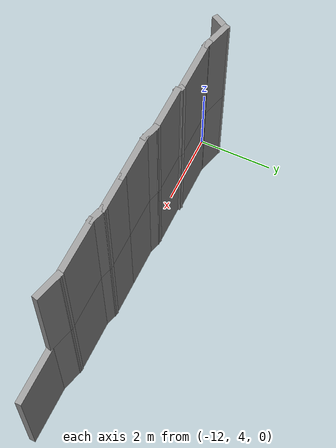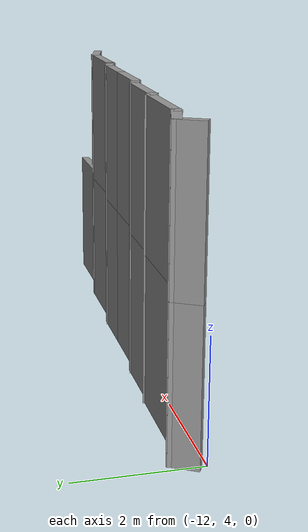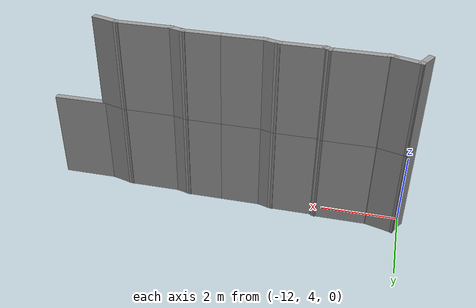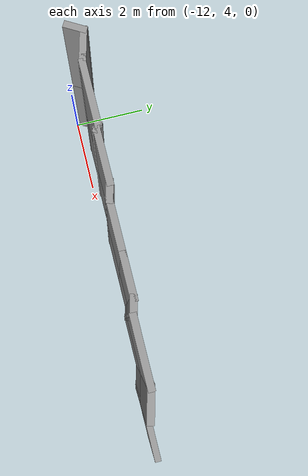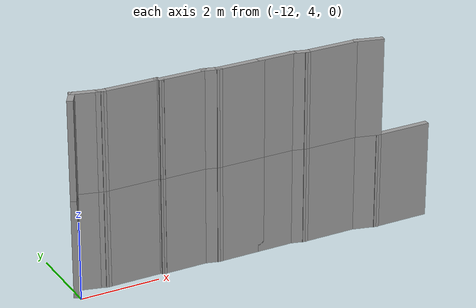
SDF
<sdf version="1.7">
 <model name="EnvDC01">
  <link name="Wall_165">
   <pose>-3.40726 3.91418 0 0 -0 3.14159</pose>
   <visual name="Wall_165_Visual">
    <pose>0 0 1.25 0 -0 0</pose>
    <geometry><box><size>1.5 0.15 2.5</size></box></geometry>
    <material>
     <script><uri>file://media/materials/scripts/gazebo.material</uri><name>Gazebo/Grey</name></script>
     <ambient>1 1 1 1</ambient>
     <shader type="pixel"/>
    </material>
    <meta><layer>0</layer></meta>
   </visual>
   <collision name="Wall_165_Collision">
    <pose>0 0 1.25 0 -0 0</pose>
    <geometry><box><size>1.5 0.15 2.5</size></box></geometry>
    <surface>
     <friction>
      <ode><mu>1</mu><mu2>1</mu2><fdir1>0 0 0</fdir1><slip1>0</slip1><slip2>0</slip2></ode>
      <torsional>
       <coefficient>1</coefficient>
       <patch_radius>0</patch_radius>
       <surface_radius>0</surface_radius>
       <use_patch_radius>1</use_patch_radius>
       <ode><slip>0</slip></ode>
      </torsional>
     </friction>
     <bounce><restitution_coefficient>0</restitution_coefficient><threshold>1e+06</threshold></bounce>
     <contact>
      <collide_without_contact>0</collide_without_contact>
      <collide_without_contact_bitmask>1</collide_without_contact_bitmask>
      <collide_bitmask>1</collide_bitmask>
      <ode>
       <soft_cfm>0</soft_cfm>
       <soft_erp>0.2</soft_erp>
       <kp>1e+13</kp>
       <kd>1</kd>
       <max_vel>0.01</max_vel>
       <min_depth>0</min_depth>
      </ode>
      <bullet>
       <split_impulse>1</split_impulse>
       <split_impulse_penetration_threshold>-0.01</split_impulse_penetration_threshold>
       <soft_cfm>0</soft_cfm>
       <soft_erp>0.2</soft_erp>
       <kp>1e+13</kp>
       <kd>1</kd>
      </bullet>
     </contact>
    </surface>
   </collision>
  </link>
  <link name="Wall_166">
   <pose>-4.37204 3.99183 0 0 -0 2.87979</pose>
   <visual name="Wall_166_Visual">
    <pose>0 0 1.25 0 -0 0</pose>
    <geometry><box><size>0.75 0.15 2.5</size></box></geometry>
    <material>
     <script><uri>file://media/materials/scripts/gazebo.material</uri><name>Gazebo/Grey</name></script>
     <ambient>1 1 1 1</ambient>
     <shader type="pixel"/>
    </material>
    <meta><layer>0</layer></meta>
   </visual>
   <collision name="Wall_166_Collision">
    <pose>0 0 1.25 0 -0 0</pose>
    <geometry><box><size>0.75 0.15 2.5</size></box></geometry>
    <surface>
     <friction>
      <ode><mu>1</mu><mu2>1</mu2><fdir1>0 0 0</fdir1><slip1>0</slip1><slip2>0</slip2></ode>
      <torsional>
       <coefficient>1</coefficient>
       <patch_radius>0</patch_radius>
       <surface_radius>0</surface_radius>
       <use_patch_radius>1</use_patch_radius>
       <ode><slip>0</slip></ode>
      </torsional>
     </friction>
     <bounce><restitution_coefficient>0</restitution_coefficient><threshold>1e+06</threshold></bounce>
     <contact>
      <collide_without_contact>0</collide_without_contact>
      <collide_without_contact_bitmask>1</collide_without_contact_bitmask>
      <collide_bitmask>1</collide_bitmask>
      <ode>
       <soft_cfm>0</soft_cfm>
       <soft_erp>0.2</soft_erp>
       <kp>1e+13</kp>
       <kd>1</kd>
       <max_vel>0.01</max_vel>
       <min_depth>0</min_depth>
      </ode>
      <bullet>
       <split_impulse>1</split_impulse>
       <split_impulse_penetration_threshold>-0.01</split_impulse_penetration_threshold>
       <soft_cfm>0</soft_cfm>
       <soft_erp>0.2</soft_erp>
       <kp>1e+13</kp>
       <kd>1</kd>
      </bullet>
     </contact>
    </surface>
   </collision>
  </link>
  <link name="Wall_167">
   <pose>-5.33682 4.06947 0 0 -0 3.14159</pose>
   <visual name="Wall_167_Visual">
    <pose>0 0 1.25 0 -0 0</pose>
    <geometry><box><size>1.5 0.15 2.5</size></box></geometry>
    <material>
     <script><uri>file://media/materials/scripts/gazebo.material</uri><name>Gazebo/Grey</name></script>
     <ambient>1 1 1 1</ambient>
     <shader type="pixel"/>
    </material>
    <meta><layer>0</layer></meta>
   </visual>
   <collision name="Wall_167_Collision">
    <pose>0 0 1.25 0 -0 0</pose>
    <geometry><box><size>1.5 0.15 2.5</size></box></geometry>
    <surface>
     <friction>
      <ode><mu>1</mu><mu2>1</mu2><fdir1>0 0 0</fdir1><slip1>0</slip1><slip2>0</slip2></ode>
      <torsional>
       <coefficient>1</coefficient>
       <patch_radius>0</patch_radius>
       <surface_radius>0</surface_radius>
       <use_patch_radius>1</use_patch_radius>
       <ode><slip>0</slip></ode>
      </torsional>
     </friction>
     <bounce><restitution_coefficient>0</restitution_coefficient><threshold>1e+06</threshold></bounce>
     <contact>
      <collide_without_contact>0</collide_without_contact>
      <collide_without_contact_bitmask>1</collide_without_contact_bitmask>
      <collide_bitmask>1</collide_bitmask>
      <ode>
       <soft_cfm>0</soft_cfm>
       <soft_erp>0.2</soft_erp>
       <kp>1e+13</kp>
       <kd>1</kd>
       <max_vel>0.01</max_vel>
       <min_depth>0</min_depth>
      </ode>
      <bullet>
       <split_impulse>1</split_impulse>
       <split_impulse_penetration_threshold>-0.01</split_impulse_penetration_threshold>
       <soft_cfm>0</soft_cfm>
       <soft_erp>0.2</soft_erp>
       <kp>1e+13</kp>
       <kd>1</kd>
      </bullet>
     </contact>
    </surface>
   </collision>
  </link>
  <link name="Wall_168">
   <pose>-6.18085 4.11477 0 0 -0 2.87979</pose>
   <visual name="Wall_168_Visual">
    <pose>0 0 1.25 0 -0 0</pose>
    <geometry><box><size>0.5 0.15 2.5</size></box></geometry>
    <material>
     <script><uri>file://media/materials/scripts/gazebo.material</uri><name>Gazebo/Grey</name></script>
     <ambient>1 1 1 1</ambient>
     <shader type="pixel"/>
    </material>
    <meta><layer>0</layer></meta>
   </visual>
   <collision name="Wall_168_Collision">
    <pose>0 0 1.25 0 -0 0</pose>
    <geometry><box><size>0.5 0.15 2.5</size></box></geometry>
    <surface>
     <friction>
      <ode><mu>1</mu><mu2>1</mu2><fdir1>0 0 0</fdir1><slip1>0</slip1><slip2>0</slip2></ode>
      <torsional>
       <coefficient>1</coefficient>
       <patch_radius>0</patch_radius>
       <surface_radius>0</surface_radius>
       <use_patch_radius>1</use_patch_radius>
       <ode><slip>0</slip></ode>
      </torsional>
     </friction>
     <bounce><restitution_coefficient>0</restitution_coefficient><threshold>1e+06</threshold></bounce>
     <contact>
      <collide_without_contact>0</collide_without_contact>
      <collide_without_contact_bitmask>1</collide_without_contact_bitmask>
      <collide_bitmask>1</collide_bitmask>
      <ode>
       <soft_cfm>0</soft_cfm>
       <soft_erp>0.2</soft_erp>
       <kp>1e+13</kp>
       <kd>1</kd>
       <max_vel>0.01</max_vel>
       <min_depth>0</min_depth>
      </ode>
      <bullet>
       <split_impulse>1</split_impulse>
       <split_impulse_penetration_threshold>-0.01</split_impulse_penetration_threshold>
       <soft_cfm>0</soft_cfm>
       <soft_erp>0.2</soft_erp>
       <kp>1e+13</kp>
       <kd>1</kd>
      </bullet>
     </contact>
    </surface>
   </collision>
  </link>
  <link name="Wall_169">
   <pose>-6.77489 4.16006 0 0 -0 3.14159</pose>
   <visual name="Wall_169_Visual">
    <pose>0 0 1.25 0 -0 0</pose>
    <geometry><box><size>1 0.15 2.5</size></box></geometry>
    <material>
     <script><uri>file://media/materials/scripts/gazebo.material</uri><name>Gazebo/Grey</name></script>
     <ambient>1 1 1 1</ambient>
     <shader type="pixel"/>
    </material>
    <meta><layer>0</layer></meta>
   </visual>
   <collision name="Wall_169_Collision">
    <pose>0 0 1.25 0 -0 0</pose>
    <geometry><box><size>1 0.15 2.5</size></box></geometry>
    <surface>
     <friction>
      <ode><mu>1</mu><mu2>1</mu2><fdir1>0 0 0</fdir1><slip1>0</slip1><slip2>0</slip2></ode>
      <torsional>
       <coefficient>1</coefficient>
       <patch_radius>0</patch_radius>
       <surface_radius>0</surface_radius>
       <use_patch_radius>1</use_patch_radius>
       <ode><slip>0</slip></ode>
      </torsional>
     </friction>
     <bounce><restitution_coefficient>0</restitution_coefficient><threshold>1e+06</threshold></bounce>
     <contact>
      <collide_without_contact>0</collide_without_contact>
      <collide_without_contact_bitmask>1</collide_without_contact_bitmask>
      <collide_bitmask>1</collide_bitmask>
      <ode>
       <soft_cfm>0</soft_cfm>
       <soft_erp>0.2</soft_erp>
       <kp>1e+13</kp>
       <kd>1</kd>
       <max_vel>0.01</max_vel>
       <min_depth>0</min_depth>
      </ode>
      <bullet>
       <split_impulse>1</split_impulse>
       <split_impulse_penetration_threshold>-0.01</split_impulse_penetration_threshold>
       <soft_cfm>0</soft_cfm>
       <soft_erp>0.2</soft_erp>
       <kp>1e+13</kp>
       <kd>1</kd>
      </bullet>
     </contact>
    </surface>
   </collision>
  </link>
  <link name="Wall_170">
   <pose>-7.74989 4.16006 0 0 -0 3.14159</pose>
   <visual name="Wall_170_Visual">
    <pose>0 0 1.25 0 -0 0</pose>
    <geometry><box><size>1.25 0.15 2.5</size></box></geometry>
    <material>
     <script><uri>file://media/materials/scripts/gazebo.material</uri><name>Gazebo/Grey</name></script>
     <ambient>1 1 1 1</ambient>
     <shader type="pixel"/>
    </material>
    <meta><layer>0</layer></meta>
   </visual>
   <collision name="Wall_170_Collision">
    <pose>0 0 1.25 0 -0 0</pose>
    <geometry><box><size>1.25 0.15 2.5</size></box></geometry>
    <surface>
     <friction>
      <ode><mu>1</mu><mu2>1</mu2><fdir1>0 0 0</fdir1><slip1>0</slip1><slip2>0</slip2></ode>
      <torsional>
       <coefficient>1</coefficient>
       <patch_radius>0</patch_radius>
       <surface_radius>0</surface_radius>
       <use_patch_radius>1</use_patch_radius>
       <ode><slip>0</slip></ode>
      </torsional>
     </friction>
     <bounce><restitution_coefficient>0</restitution_coefficient><threshold>1e+06</threshold></bounce>
     <contact>
      <collide_without_contact>0</collide_without_contact>
      <collide_without_contact_bitmask>1</collide_without_contact_bitmask>
      <collide_bitmask>1</collide_bitmask>
      <ode>
       <soft_cfm>0</soft_cfm>
       <soft_erp>0.2</soft_erp>
       <kp>1e+13</kp>
       <kd>1</kd>
       <max_vel>0.01</max_vel>
       <min_depth>0</min_depth>
      </ode>
      <bullet>
       <split_impulse>1</split_impulse>
       <split_impulse_penetration_threshold>-0.01</split_impulse_penetration_threshold>
       <soft_cfm>0</soft_cfm>
       <soft_erp>0.2</soft_erp>
       <kp>1e+13</kp>
       <kd>1</kd>
      </bullet>
     </contact>
    </surface>
   </collision>
  </link>
  <link name="Wall_172">
   <pose>-8.46893 4.20535 0 0 -0 2.87979</pose>
   <visual name="Wall_172_Visual">
    <pose>0 0 1.25 0 -0 0</pose>
    <geometry><box><size>0.5 0.15 2.5</size></box></geometry>
    <material>
     <script><uri>file://media/materials/scripts/gazebo.material</uri><name>Gazebo/Grey</name></script>
     <ambient>1 1 1 1</ambient>
     <shader type="pixel"/>
    </material>
    <meta><layer>0</layer></meta>
   </visual>
   <collision name="Wall_172_Collision">
    <pose>0 0 1.25 0 -0 0</pose>
    <geometry><box><size>0.5 0.15 2.5</size></box></geometry>
    <surface>
     <friction>
      <ode><mu>1</mu><mu2>1</mu2><fdir1>0 0 0</fdir1><slip1>0</slip1><slip2>0</slip2></ode>
      <torsional>
       <coefficient>1</coefficient>
       <patch_radius>0</patch_radius>
       <surface_radius>0</surface_radius>
       <use_patch_radius>1</use_patch_radius>
       <ode><slip>0</slip></ode>
      </torsional>
     </friction>
     <bounce><restitution_coefficient>0</restitution_coefficient><threshold>1e+06</threshold></bounce>
     <contact>
      <collide_without_contact>0</collide_without_contact>
      <collide_without_contact_bitmask>1</collide_without_contact_bitmask>
      <collide_bitmask>1</collide_bitmask>
      <ode>
       <soft_cfm>0</soft_cfm>
       <soft_erp>0.2</soft_erp>
       <kp>1e+13</kp>
       <kd>1</kd>
       <max_vel>0.01</max_vel>
       <min_depth>0</min_depth>
      </ode>
      <bullet>
       <split_impulse>1</split_impulse>
       <split_impulse_penetration_threshold>-0.01</split_impulse_penetration_threshold>
       <soft_cfm>0</soft_cfm>
       <soft_erp>0.2</soft_erp>
       <kp>1e+13</kp>
       <kd>1</kd>
      </bullet>
     </contact>
    </surface>
   </collision>
  </link>
  <link name="Wall_173">
   <pose>-9.18796 4.25064 0 0 -0 3.14159</pose>
   <visual name="Wall_173_Visual">
    <pose>0 0 1.25 0 -0 0</pose>
    <geometry><box><size>1.25 0.15 2.5</size></box></geometry>
    <material>
     <script><uri>file://media/materials/scripts/gazebo.material</uri><name>Gazebo/Grey</name></script>
     <ambient>1 1 1 1</ambient>
     <shader type="pixel"/>
    </material>
    <meta><layer>0</layer></meta>
   </visual>
   <collision name="Wall_173_Collision">
    <pose>0 0 1.25 0 -0 0</pose>
    <geometry><box><size>1.25 0.15 2.5</size></box></geometry>
    <surface>
     <friction>
      <ode><mu>1</mu><mu2>1</mu2><fdir1>0 0 0</fdir1><slip1>0</slip1><slip2>0</slip2></ode>
      <torsional>
       <coefficient>1</coefficient>
       <patch_radius>0</patch_radius>
       <surface_radius>0</surface_radius>
       <use_patch_radius>1</use_patch_radius>
       <ode><slip>0</slip></ode>
      </torsional>
     </friction>
     <bounce><restitution_coefficient>0</restitution_coefficient><threshold>1e+06</threshold></bounce>
     <contact>
      <collide_without_contact>0</collide_without_contact>
      <collide_without_contact_bitmask>1</collide_without_contact_bitmask>
      <collide_bitmask>1</collide_bitmask>
      <ode>
       <soft_cfm>0</soft_cfm>
       <soft_erp>0.2</soft_erp>
       <kp>1e+13</kp>
       <kd>1</kd>
       <max_vel>0.01</max_vel>
       <min_depth>0</min_depth>
      </ode>
      <bullet>
       <split_impulse>1</split_impulse>
       <split_impulse_penetration_threshold>-0.01</split_impulse_penetration_threshold>
       <soft_cfm>0</soft_cfm>
       <soft_erp>0.2</soft_erp>
       <kp>1e+13</kp>
       <kd>1</kd>
      </bullet>
     </contact>
    </surface>
   </collision>
  </link>
  <link name="Wall_174">
   <pose>-9.78126 4.27564 0 0 -0 2.61799</pose>
   <visual name="Wall_174_Visual">
    <pose>0 0 1.25 0 -0 0</pose>
    <geometry><box><size>0.25 0.15 2.5</size></box></geometry>
    <material>
     <script><uri>file://media/materials/scripts/gazebo.material</uri><name>Gazebo/Grey</name></script>
     <ambient>1 1 1 1</ambient>
     <shader type="pixel"/>
    </material>
    <meta><layer>0</layer></meta>
   </visual>
   <collision name="Wall_174_Collision">
    <pose>0 0 1.25 0 -0 0</pose>
    <geometry><box><size>0.25 0.15 2.5</size></box></geometry>
    <surface>
     <friction>
      <ode><mu>1</mu><mu2>1</mu2><fdir1>0 0 0</fdir1><slip1>0</slip1><slip2>0</slip2></ode>
      <torsional>
       <coefficient>1</coefficient>
       <patch_radius>0</patch_radius>
       <surface_radius>0</surface_radius>
       <use_patch_radius>1</use_patch_radius>
       <ode><slip>0</slip></ode>
      </torsional>
     </friction>
     <bounce><restitution_coefficient>0</restitution_coefficient><threshold>1e+06</threshold></bounce>
     <contact>
      <collide_without_contact>0</collide_without_contact>
      <collide_without_contact_bitmask>1</collide_without_contact_bitmask>
      <collide_bitmask>1</collide_bitmask>
      <ode>
       <soft_cfm>0</soft_cfm>
       <soft_erp>0.2</soft_erp>
       <kp>1e+13</kp>
       <kd>1</kd>
       <max_vel>0.01</max_vel>
       <min_depth>0</min_depth>
      </ode>
      <bullet>
       <split_impulse>1</split_impulse>
       <split_impulse_penetration_threshold>-0.01</split_impulse_penetration_threshold>
       <soft_cfm>0</soft_cfm>
       <soft_erp>0.2</soft_erp>
       <kp>1e+13</kp>
       <kd>1</kd>
      </bullet>
     </contact>
    </surface>
   </collision>
  </link>
  <link name="Wall_175">
   <pose>-10.4996 4.30065 0 0 -0 3.14159</pose>
   <visual name="Wall_175_Visual">
    <pose>0 0 1.25 0 -0 0</pose>
    <geometry><box><size>1.5 0.15 2.5</size></box></geometry>
    <material>
     <script><uri>file://media/materials/scripts/gazebo.material</uri><name>Gazebo/Grey</name></script>
     <ambient>1 1 1 1</ambient>
     <shader type="pixel"/>
    </material>
    <meta><layer>0</layer></meta>
   </visual>
   <collision name="Wall_175_Collision">
    <pose>0 0 1.25 0 -0 0</pose>
    <geometry><box><size>1.5 0.15 2.5</size></box></geometry>
    <surface>
     <friction>
      <ode><mu>1</mu><mu2>1</mu2><fdir1>0 0 0</fdir1><slip1>0</slip1><slip2>0</slip2></ode>
      <torsional>
       <coefficient>1</coefficient>
       <patch_radius>0</patch_radius>
       <surface_radius>0</surface_radius>
       <use_patch_radius>1</use_patch_radius>
       <ode><slip>0</slip></ode>
      </torsional>
     </friction>
     <bounce><restitution_coefficient>0</restitution_coefficient><threshold>1e+06</threshold></bounce>
     <contact>
      <collide_without_contact>0</collide_without_contact>
      <collide_without_contact_bitmask>1</collide_without_contact_bitmask>
      <collide_bitmask>1</collide_bitmask>
      <ode>
       <soft_cfm>0</soft_cfm>
       <soft_erp>0.2</soft_erp>
       <kp>1e+13</kp>
       <kd>1</kd>
       <max_vel>0.01</max_vel>
       <min_depth>0</min_depth>
      </ode>
      <bullet>
       <split_impulse>1</split_impulse>
       <split_impulse_penetration_threshold>-0.01</split_impulse_penetration_threshold>
       <soft_cfm>0</soft_cfm>
       <soft_erp>0.2</soft_erp>
       <kp>1e+13</kp>
       <kd>1</kd>
      </bullet>
     </contact>
    </surface>
   </collision>
  </link>
  <link name="Wall_180">
   <pose>-11.2229 4.31359 0 0 -0 2.87979</pose>
   <visual name="Wall_180_Visual">
    <pose>0 0 1.25 0 -0 0</pose>
    <geometry><box><size>0.25 0.15 2.5</size></box></geometry>
    <material>
     <script><uri>file://media/materials/scripts/gazebo.material</uri><name>Gazebo/Grey</name></script>
     <ambient>1 1 1 1</ambient>
     <shader type="pixel"/>
    </material>
    <meta><layer>0</layer></meta>
   </visual>
   <collision name="Wall_180_Collision">
    <pose>0 0 1.25 0 -0 0</pose>
    <geometry><box><size>0.25 0.15 2.5</size></box></geometry>
    <surface>
     <friction>
      <ode><mu>1</mu><mu2>1</mu2><fdir1>0 0 0</fdir1><slip1>0</slip1><slip2>0</slip2></ode>
      <torsional>
       <coefficient>1</coefficient>
       <patch_radius>0</patch_radius>
       <surface_radius>0</surface_radius>
       <use_patch_radius>1</use_patch_radius>
       <ode><slip>0</slip></ode>
      </torsional>
     </friction>
     <bounce><restitution_coefficient>0</restitution_coefficient><threshold>1e+06</threshold></bounce>
     <contact>
      <collide_without_contact>0</collide_without_contact>
      <collide_without_contact_bitmask>1</collide_without_contact_bitmask>
      <collide_bitmask>1</collide_bitmask>
      <ode>
       <soft_cfm>0</soft_cfm>
       <soft_erp>0.2</soft_erp>
       <kp>1e+13</kp>
       <kd>1</kd>
       <max_vel>0.01</max_vel>
       <min_depth>0</min_depth>
      </ode>
      <bullet>
       <split_impulse>1</split_impulse>
       <split_impulse_penetration_threshold>-0.01</split_impulse_penetration_threshold>
       <soft_cfm>0</soft_cfm>
       <soft_erp>0.2</soft_erp>
       <kp>1e+13</kp>
       <kd>1</kd>
      </bullet>
     </contact>
    </surface>
   </collision>
  </link>
  <link name="Wall_181">
   <pose>-11.5609 4.40417 0 0 -0 2.87979</pose>
   <visual name="Wall_181_Visual">
    <pose>0 0 1.25 0 -0 0</pose>
    <geometry><box><size>0.75 0.15 2.5</size></box></geometry>
    <material>
     <script><uri>file://media/materials/scripts/gazebo.material</uri><name>Gazebo/Grey</name></script>
     <ambient>1 1 1 1</ambient>
     <shader type="pixel"/>
    </material>
    <meta><layer>0</layer></meta>
   </visual>
   <collision name="Wall_181_Collision">
    <pose>0 0 1.25 0 -0 0</pose>
    <geometry><box><size>0.75 0.15 2.5</size></box></geometry>
    <surface>
     <friction>
      <ode><mu>1</mu><mu2>1</mu2><fdir1>0 0 0</fdir1><slip1>0</slip1><slip2>0</slip2></ode>
      <torsional>
       <coefficient>1</coefficient>
       <patch_radius>0</patch_radius>
       <surface_radius>0</surface_radius>
       <use_patch_radius>1</use_patch_radius>
       <ode><slip>0</slip></ode>
      </torsional>
     </friction>
     <bounce><restitution_coefficient>0</restitution_coefficient><threshold>1e+06</threshold></bounce>
     <contact>
      <collide_without_contact>0</collide_without_contact>
      <collide_without_contact_bitmask>1</collide_without_contact_bitmask>
      <collide_bitmask>1</collide_bitmask>
      <ode>
       <soft_cfm>0</soft_cfm>
       <soft_erp>0.2</soft_erp>
       <kp>1e+13</kp>
       <kd>1</kd>
       <max_vel>0.01</max_vel>
       <min_depth>0</min_depth>
      </ode>
      <bullet>
       <split_impulse>1</split_impulse>
       <split_impulse_penetration_threshold>-0.01</split_impulse_penetration_threshold>
       <soft_cfm>0</soft_cfm>
       <soft_erp>0.2</soft_erp>
       <kp>1e+13</kp>
       <kd>1</kd>
      </bullet>
     </contact>
    </surface>
   </collision>
  </link>
  <link name="Wall_187">
   <pose>-11.9382 4.33026 0 0 0 -2.0944</pose>
   <visual name="Wall_187_Visual">
    <pose>0 0 1.25 0 -0 0</pose>
    <geometry><box><size>0.5 0.15 2.5</size></box></geometry>
    <material>
     <script><uri>file://media/materials/scripts/gazebo.material</uri><name>Gazebo/Grey</name></script>
     <ambient>1 1 1 1</ambient>
     <shader type="pixel"/>
    </material>
    <meta><layer>0</layer></meta>
   </visual>
   <collision name="Wall_187_Collision">
    <pose>0 0 1.25 0 -0 0</pose>
    <geometry><box><size>0.5 0.15 2.5</size></box></geometry>
    <surface>
     <friction>
      <ode><mu>1</mu><mu2>1</mu2><fdir1>0 0 0</fdir1><slip1>0</slip1><slip2>0</slip2></ode>
      <torsional>
       <coefficient>1</coefficient>
       <patch_radius>0</patch_radius>
       <surface_radius>0</surface_radius>
       <use_patch_radius>1</use_patch_radius>
       <ode><slip>0</slip></ode>
      </torsional>
     </friction>
     <bounce><restitution_coefficient>0</restitution_coefficient><threshold>1e+06</threshold></bounce>
     <contact>
      <collide_without_contact>0</collide_without_contact>
      <collide_without_contact_bitmask>1</collide_without_contact_bitmask>
      <collide_bitmask>1</collide_bitmask>
      <ode>
       <soft_cfm>0</soft_cfm>
       <soft_erp>0.2</soft_erp>
       <kp>1e+13</kp>
       <kd>1</kd>
       <max_vel>0.01</max_vel>
       <min_depth>0</min_depth>
      </ode>
      <bullet>
       <split_impulse>1</split_impulse>
       <split_impulse_penetration_threshold>-0.01</split_impulse_penetration_threshold>
       <soft_cfm>0</soft_cfm>
       <soft_erp>0.2</soft_erp>
       <kp>1e+13</kp>
       <kd>1</kd>
      </bullet>
     </contact>
    </surface>
   </collision>
  </link>
  <link name="Wall_354">
   <pose>-4.37204 3.99183 2.5 0 -0 2.87979</pose>
   <visual name="Wall_354_Visual">
    <pose>0 0 1.25 0 -0 0</pose>
    <geometry><box><size>0.75 0.15 2.5</size></box></geometry>
    <material>
     <script><uri>file://media/materials/scripts/gazebo.material</uri><name>Gazebo/Grey</name></script>
     <ambient>1 1 1 1</ambient>
     <shader type="pixel"/>
    </material>
    <meta><layer>1</layer></meta>
   </visual>
   <collision name="Wall_354_Collision">
    <pose>0 0 1.25 0 -0 0</pose>
    <geometry><box><size>0.75 0.15 2.5</size></box></geometry>
    <surface>
     <friction>
      <ode><mu>1</mu><mu2>1</mu2><fdir1>0 0 0</fdir1><slip1>0</slip1><slip2>0</slip2></ode>
      <torsional>
       <coefficient>1</coefficient>
       <patch_radius>0</patch_radius>
       <surface_radius>0</surface_radius>
       <use_patch_radius>1</use_patch_radius>
       <ode><slip>0</slip></ode>
      </torsional>
     </friction>
     <bounce><restitution_coefficient>0</restitution_coefficient><threshold>1e+06</threshold></bounce>
     <contact>
      <collide_without_contact>0</collide_without_contact>
      <collide_without_contact_bitmask>1</collide_without_contact_bitmask>
      <collide_bitmask>1</collide_bitmask>
      <ode>
       <soft_cfm>0</soft_cfm>
       <soft_erp>0.2</soft_erp>
       <kp>1e+13</kp>
       <kd>1</kd>
       <max_vel>0.01</max_vel>
       <min_depth>0</min_depth>
      </ode>
      <bullet>
       <split_impulse>1</split_impulse>
       <split_impulse_penetration_threshold>-0.01</split_impulse_penetration_threshold>
       <soft_cfm>0</soft_cfm>
       <soft_erp>0.2</soft_erp>
       <kp>1e+13</kp>
       <kd>1</kd>
      </bullet>
     </contact>
    </surface>
   </collision>
  </link>
  <link name="Wall_355">
   <pose>-5.33682 4.06947 2.5 0 -0 3.14159</pose>
   <visual name="Wall_355_Visual">
    <pose>0 0 1.25 0 -0 0</pose>
    <geometry><box><size>1.5 0.15 2.5</size></box></geometry>
    <material>
     <script><uri>file://media/materials/scripts/gazebo.material</uri><name>Gazebo/Grey</name></script>
     <ambient>1 1 1 1</ambient>
     <shader type="pixel"/>
    </material>
    <meta><layer>1</layer></meta>
   </visual>
   <collision name="Wall_355_Collision">
    <pose>0 0 1.25 0 -0 0</pose>
    <geometry><box><size>1.5 0.15 2.5</size></box></geometry>
    <surface>
     <friction>
      <ode><mu>1</mu><mu2>1</mu2><fdir1>0 0 0</fdir1><slip1>0</slip1><slip2>0</slip2></ode>
      <torsional>
       <coefficient>1</coefficient>
       <patch_radius>0</patch_radius>
       <surface_radius>0</surface_radius>
       <use_patch_radius>1</use_patch_radius>
       <ode><slip>0</slip></ode>
      </torsional>
     </friction>
     <bounce><restitution_coefficient>0</restitution_coefficient><threshold>1e+06</threshold></bounce>
     <contact>
      <collide_without_contact>0</collide_without_contact>
      <collide_without_contact_bitmask>1</collide_without_contact_bitmask>
      <collide_bitmask>1</collide_bitmask>
      <ode>
       <soft_cfm>0</soft_cfm>
       <soft_erp>0.2</soft_erp>
       <kp>1e+13</kp>
       <kd>1</kd>
       <max_vel>0.01</max_vel>
       <min_depth>0</min_depth>
      </ode>
      <bullet>
       <split_impulse>1</split_impulse>
       <split_impulse_penetration_threshold>-0.01</split_impulse_penetration_threshold>
       <soft_cfm>0</soft_cfm>
       <soft_erp>0.2</soft_erp>
       <kp>1e+13</kp>
       <kd>1</kd>
      </bullet>
     </contact>
    </surface>
   </collision>
  </link>
  <link name="Wall_356">
   <pose>-6.18085 4.11477 2.5 0 -0 2.87979</pose>
   <visual name="Wall_356_Visual">
    <pose>0 0 1.25 0 -0 0</pose>
    <geometry><box><size>0.5 0.15 2.5</size></box></geometry>
    <material>
     <script><uri>file://media/materials/scripts/gazebo.material</uri><name>Gazebo/Grey</name></script>
     <ambient>1 1 1 1</ambient>
     <shader type="pixel"/>
    </material>
    <meta><layer>1</layer></meta>
   </visual>
   <collision name="Wall_356_Collision">
    <pose>0 0 1.25 0 -0 0</pose>
    <geometry><box><size>0.5 0.15 2.5</size></box></geometry>
    <surface>
     <friction>
      <ode><mu>1</mu><mu2>1</mu2><fdir1>0 0 0</fdir1><slip1>0</slip1><slip2>0</slip2></ode>
      <torsional>
       <coefficient>1</coefficient>
       <patch_radius>0</patch_radius>
       <surface_radius>0</surface_radius>
       <use_patch_radius>1</use_patch_radius>
       <ode><slip>0</slip></ode>
      </torsional>
     </friction>
     <bounce><restitution_coefficient>0</restitution_coefficient><threshold>1e+06</threshold></bounce>
     <contact>
      <collide_without_contact>0</collide_without_contact>
      <collide_without_contact_bitmask>1</collide_without_contact_bitmask>
      <collide_bitmask>1</collide_bitmask>
      <ode>
       <soft_cfm>0</soft_cfm>
       <soft_erp>0.2</soft_erp>
       <kp>1e+13</kp>
       <kd>1</kd>
       <max_vel>0.01</max_vel>
       <min_depth>0</min_depth>
      </ode>
      <bullet>
       <split_impulse>1</split_impulse>
       <split_impulse_penetration_threshold>-0.01</split_impulse_penetration_threshold>
       <soft_cfm>0</soft_cfm>
       <soft_erp>0.2</soft_erp>
       <kp>1e+13</kp>
       <kd>1</kd>
      </bullet>
     </contact>
    </surface>
   </collision>
  </link>
  <link name="Wall_357">
   <pose>-6.77489 4.16006 2.5 0 -0 3.14159</pose>
   <visual name="Wall_357_Visual">
    <pose>0 0 1.25 0 -0 0</pose>
    <geometry><box><size>1 0.15 2.5</size></box></geometry>
    <material>
     <script><uri>file://media/materials/scripts/gazebo.material</uri><name>Gazebo/Grey</name></script>
     <ambient>1 1 1 1</ambient>
     <shader type="pixel"/>
    </material>
    <meta><layer>1</layer></meta>
   </visual>
   <collision name="Wall_357_Collision">
    <pose>0 0 1.25 0 -0 0</pose>
    <geometry><box><size>1 0.15 2.5</size></box></geometry>
    <surface>
     <friction>
      <ode><mu>1</mu><mu2>1</mu2><fdir1>0 0 0</fdir1><slip1>0</slip1><slip2>0</slip2></ode>
      <torsional>
       <coefficient>1</coefficient>
       <patch_radius>0</patch_radius>
       <surface_radius>0</surface_radius>
       <use_patch_radius>1</use_patch_radius>
       <ode><slip>0</slip></ode>
      </torsional>
     </friction>
     <bounce><restitution_coefficient>0</restitution_coefficient><threshold>1e+06</threshold></bounce>
     <contact>
      <collide_without_contact>0</collide_without_contact>
      <collide_without_contact_bitmask>1</collide_without_contact_bitmask>
      <collide_bitmask>1</collide_bitmask>
      <ode>
       <soft_cfm>0</soft_cfm>
       <soft_erp>0.2</soft_erp>
       <kp>1e+13</kp>
       <kd>1</kd>
       <max_vel>0.01</max_vel>
       <min_depth>0</min_depth>
      </ode>
      <bullet>
       <split_impulse>1</split_impulse>
       <split_impulse_penetration_threshold>-0.01</split_impulse_penetration_threshold>
       <soft_cfm>0</soft_cfm>
       <soft_erp>0.2</soft_erp>
       <kp>1e+13</kp>
       <kd>1</kd>
      </bullet>
     </contact>
    </surface>
   </collision>
  </link>
  <link name="Wall_358">
   <pose>-7.74989 4.16006 2.5 0 -0 3.14159</pose>
   <visual name="Wall_358_Visual">
    <pose>0 0 1.25 0 -0 0</pose>
    <geometry><box><size>1.25 0.15 2.5</size></box></geometry>
    <material>
     <script><uri>file://media/materials/scripts/gazebo.material</uri><name>Gazebo/Grey</name></script>
     <ambient>1 1 1 1</ambient>
     <shader type="pixel"/>
    </material>
    <meta><layer>1</layer></meta>
   </visual>
   <collision name="Wall_358_Collision">
    <pose>0 0 1.25 0 -0 0</pose>
    <geometry><box><size>1.25 0.15 2.5</size></box></geometry>
    <surface>
     <friction>
      <ode><mu>1</mu><mu2>1</mu2><fdir1>0 0 0</fdir1><slip1>0</slip1><slip2>0</slip2></ode>
      <torsional>
       <coefficient>1</coefficient>
       <patch_radius>0</patch_radius>
       <surface_radius>0</surface_radius>
       <use_patch_radius>1</use_patch_radius>
       <ode><slip>0</slip></ode>
      </torsional>
     </friction>
     <bounce><restitution_coefficient>0</restitution_coefficient><threshold>1e+06</threshold></bounce>
     <contact>
      <collide_without_contact>0</collide_without_contact>
      <collide_without_contact_bitmask>1</collide_without_contact_bitmask>
      <collide_bitmask>1</collide_bitmask>
      <ode>
       <soft_cfm>0</soft_cfm>
       <soft_erp>0.2</soft_erp>
       <kp>1e+13</kp>
       <kd>1</kd>
       <max_vel>0.01</max_vel>
       <min_depth>0</min_depth>
      </ode>
      <bullet>
       <split_impulse>1</split_impulse>
       <split_impulse_penetration_threshold>-0.01</split_impulse_penetration_threshold>
       <soft_cfm>0</soft_cfm>
       <soft_erp>0.2</soft_erp>
       <kp>1e+13</kp>
       <kd>1</kd>
      </bullet>
     </contact>
    </surface>
   </collision>
  </link>
  <link name="Wall_359">
   <pose>-8.46893 4.20535 2.5 0 -0 2.87979</pose>
   <visual name="Wall_359_Visual">
    <pose>0 0 1.25 0 -0 0</pose>
    <geometry><box><size>0.5 0.15 2.5</size></box></geometry>
    <material>
     <script><uri>file://media/materials/scripts/gazebo.material</uri><name>Gazebo/Grey</name></script>
     <ambient>1 1 1 1</ambient>
     <shader type="pixel"/>
    </material>
    <meta><layer>1</layer></meta>
   </visual>
   <collision name="Wall_359_Collision">
    <pose>0 0 1.25 0 -0 0</pose>
    <geometry><box><size>0.5 0.15 2.5</size></box></geometry>
    <surface>
     <friction>
      <ode><mu>1</mu><mu2>1</mu2><fdir1>0 0 0</fdir1><slip1>0</slip1><slip2>0</slip2></ode>
      <torsional>
       <coefficient>1</coefficient>
       <patch_radius>0</patch_radius>
       <surface_radius>0</surface_radius>
       <use_patch_radius>1</use_patch_radius>
       <ode><slip>0</slip></ode>
      </torsional>
     </friction>
     <bounce><restitution_coefficient>0</restitution_coefficient><threshold>1e+06</threshold></bounce>
     <contact>
      <collide_without_contact>0</collide_without_contact>
      <collide_without_contact_bitmask>1</collide_without_contact_bitmask>
      <collide_bitmask>1</collide_bitmask>
      <ode>
       <soft_cfm>0</soft_cfm>
       <soft_erp>0.2</soft_erp>
       <kp>1e+13</kp>
       <kd>1</kd>
       <max_vel>0.01</max_vel>
       <min_depth>0</min_depth>
      </ode>
      <bullet>
       <split_impulse>1</split_impulse>
       <split_impulse_penetration_threshold>-0.01</split_impulse_penetration_threshold>
       <soft_cfm>0</soft_cfm>
       <soft_erp>0.2</soft_erp>
       <kp>1e+13</kp>
       <kd>1</kd>
      </bullet>
     </contact>
    </surface>
   </collision>
  </link>
  <link name="Wall_360">
   <pose>-9.18796 4.25064 2.5 0 -0 3.14159</pose>
   <visual name="Wall_360_Visual">
    <pose>0 0 1.25 0 -0 0</pose>
    <geometry><box><size>1.25 0.15 2.5</size></box></geometry>
    <material>
     <script><uri>file://media/materials/scripts/gazebo.material</uri><name>Gazebo/Grey</name></script>
     <ambient>1 1 1 1</ambient>
     <shader type="pixel"/>
    </material>
    <meta><layer>1</layer></meta>
   </visual>
   <collision name="Wall_360_Collision">
    <pose>0 0 1.25 0 -0 0</pose>
    <geometry><box><size>1.25 0.15 2.5</size></box></geometry>
    <surface>
     <friction>
      <ode><mu>1</mu><mu2>1</mu2><fdir1>0 0 0</fdir1><slip1>0</slip1><slip2>0</slip2></ode>
      <torsional>
       <coefficient>1</coefficient>
       <patch_radius>0</patch_radius>
       <surface_radius>0</surface_radius>
       <use_patch_radius>1</use_patch_radius>
       <ode><slip>0</slip></ode>
      </torsional>
     </friction>
     <bounce><restitution_coefficient>0</restitution_coefficient><threshold>1e+06</threshold></bounce>
     <contact>
      <collide_without_contact>0</collide_without_contact>
      <collide_without_contact_bitmask>1</collide_without_contact_bitmask>
      <collide_bitmask>1</collide_bitmask>
      <ode>
       <soft_cfm>0</soft_cfm>
       <soft_erp>0.2</soft_erp>
       <kp>1e+13</kp>
       <kd>1</kd>
       <max_vel>0.01</max_vel>
       <min_depth>0</min_depth>
      </ode>
      <bullet>
       <split_impulse>1</split_impulse>
       <split_impulse_penetration_threshold>-0.01</split_impulse_penetration_threshold>
       <soft_cfm>0</soft_cfm>
       <soft_erp>0.2</soft_erp>
       <kp>1e+13</kp>
       <kd>1</kd>
      </bullet>
     </contact>
    </surface>
   </collision>
  </link>
  <link name="Wall_361">
   <pose>-9.78126 4.27564 2.5 0 -0 2.61799</pose>
   <visual name="Wall_361_Visual">
    <pose>0 0 1.25 0 -0 0</pose>
    <geometry><box><size>0.25 0.15 2.5</size></box></geometry>
    <material>
     <script><uri>file://media/materials/scripts/gazebo.material</uri><name>Gazebo/Grey</name></script>
     <ambient>1 1 1 1</ambient>
     <shader type="pixel"/>
    </material>
    <meta><layer>1</layer></meta>
   </visual>
   <collision name="Wall_361_Collision">
    <pose>0 0 1.25 0 -0 0</pose>
    <geometry><box><size>0.25 0.15 2.5</size></box></geometry>
    <surface>
     <friction>
      <ode><mu>1</mu><mu2>1</mu2><fdir1>0 0 0</fdir1><slip1>0</slip1><slip2>0</slip2></ode>
      <torsional>
       <coefficient>1</coefficient>
       <patch_radius>0</patch_radius>
       <surface_radius>0</surface_radius>
       <use_patch_radius>1</use_patch_radius>
       <ode><slip>0</slip></ode>
      </torsional>
     </friction>
     <bounce><restitution_coefficient>0</restitution_coefficient><threshold>1e+06</threshold></bounce>
     <contact>
      <collide_without_contact>0</collide_without_contact>
      <collide_without_contact_bitmask>1</collide_without_contact_bitmask>
      <collide_bitmask>1</collide_bitmask>
      <ode>
       <soft_cfm>0</soft_cfm>
       <soft_erp>0.2</soft_erp>
       <kp>1e+13</kp>
       <kd>1</kd>
       <max_vel>0.01</max_vel>
       <min_depth>0</min_depth>
      </ode>
      <bullet>
       <split_impulse>1</split_impulse>
       <split_impulse_penetration_threshold>-0.01</split_impulse_penetration_threshold>
       <soft_cfm>0</soft_cfm>
       <soft_erp>0.2</soft_erp>
       <kp>1e+13</kp>
       <kd>1</kd>
      </bullet>
     </contact>
    </surface>
   </collision>
  </link>
  <link name="Wall_362">
   <pose>-10.4996 4.30065 2.5 0 -0 3.14159</pose>
   <visual name="Wall_362_Visual">
    <pose>0 0 1.25 0 -0 0</pose>
    <geometry><box><size>1.5 0.15 2.5</size></box></geometry>
    <material>
     <script><uri>file://media/materials/scripts/gazebo.material</uri><name>Gazebo/Grey</name></script>
     <ambient>1 1 1 1</ambient>
     <shader type="pixel"/>
    </material>
    <meta><layer>1</layer></meta>
   </visual>
   <collision name="Wall_362_Collision">
    <pose>0 0 1.25 0 -0 0</pose>
    <geometry><box><size>1.5 0.15 2.5</size></box></geometry>
    <surface>
     <friction>
      <ode><mu>1</mu><mu2>1</mu2><fdir1>0 0 0</fdir1><slip1>0</slip1><slip2>0</slip2></ode>
      <torsional>
       <coefficient>1</coefficient>
       <patch_radius>0</patch_radius>
       <surface_radius>0</surface_radius>
       <use_patch_radius>1</use_patch_radius>
       <ode><slip>0</slip></ode>
      </torsional>
     </friction>
     <bounce><restitution_coefficient>0</restitution_coefficient><threshold>1e+06</threshold></bounce>
     <contact>
      <collide_without_contact>0</collide_without_contact>
      <collide_without_contact_bitmask>1</collide_without_contact_bitmask>
      <collide_bitmask>1</collide_bitmask>
      <ode>
       <soft_cfm>0</soft_cfm>
       <soft_erp>0.2</soft_erp>
       <kp>1e+13</kp>
       <kd>1</kd>
       <max_vel>0.01</max_vel>
       <min_depth>0</min_depth>
      </ode>
      <bullet>
       <split_impulse>1</split_impulse>
       <split_impulse_penetration_threshold>-0.01</split_impulse_penetration_threshold>
       <soft_cfm>0</soft_cfm>
       <soft_erp>0.2</soft_erp>
       <kp>1e+13</kp>
       <kd>1</kd>
      </bullet>
     </contact>
    </surface>
   </collision>
  </link>
  <link name="Wall_363">
   <pose>-11.2229 4.31359 2.5 0 -0 2.87979</pose>
   <visual name="Wall_363_Visual">
    <pose>0 0 1.25 0 -0 0</pose>
    <geometry><box><size>0.25 0.15 2.5</size></box></geometry>
    <material>
     <script><uri>file://media/materials/scripts/gazebo.material</uri><name>Gazebo/Grey</name></script>
     <ambient>1 1 1 1</ambient>
     <shader type="pixel"/>
    </material>
    <meta><layer>1</layer></meta>
   </visual>
   <collision name="Wall_363_Collision">
    <pose>0 0 1.25 0 -0 0</pose>
    <geometry><box><size>0.25 0.15 2.5</size></box></geometry>
    <surface>
     <friction>
      <ode><mu>1</mu><mu2>1</mu2><fdir1>0 0 0</fdir1><slip1>0</slip1><slip2>0</slip2></ode>
      <torsional>
       <coefficient>1</coefficient>
       <patch_radius>0</patch_radius>
       <surface_radius>0</surface_radius>
       <use_patch_radius>1</use_patch_radius>
       <ode><slip>0</slip></ode>
      </torsional>
     </friction>
     <bounce><restitution_coefficient>0</restitution_coefficient><threshold>1e+06</threshold></bounce>
     <contact>
      <collide_without_contact>0</collide_without_contact>
      <collide_without_contact_bitmask>1</collide_without_contact_bitmask>
      <collide_bitmask>1</collide_bitmask>
      <ode>
       <soft_cfm>0</soft_cfm>
       <soft_erp>0.2</soft_erp>
       <kp>1e+13</kp>
       <kd>1</kd>
       <max_vel>0.01</max_vel>
       <min_depth>0</min_depth>
      </ode>
      <bullet>
       <split_impulse>1</split_impulse>
       <split_impulse_penetration_threshold>-0.01</split_impulse_penetration_threshold>
       <soft_cfm>0</soft_cfm>
       <soft_erp>0.2</soft_erp>
       <kp>1e+13</kp>
       <kd>1</kd>
      </bullet>
     </contact>
    </surface>
   </collision>
  </link>
  <link name="Wall_364">
   <pose>-11.5609 4.40417 2.5 0 -0 2.87979</pose>
   <visual name="Wall_364_Visual">
    <pose>0 0 1.25 0 -0 0</pose>
    <geometry><box><size>0.75 0.15 2.5</size></box></geometry>
    <material>
     <script><uri>file://media/materials/scripts/gazebo.material</uri><name>Gazebo/Grey</name></script>
     <ambient>1 1 1 1</ambient>
     <shader type="pixel"/>
    </material>
    <meta><layer>1</layer></meta>
   </visual>
   <collision name="Wall_364_Collision">
    <pose>0 0 1.25 0 -0 0</pose>
    <geometry><box><size>0.75 0.15 2.5</size></box></geometry>
    <surface>
     <friction>
      <ode><mu>1</mu><mu2>1</mu2><fdir1>0 0 0</fdir1><slip1>0</slip1><slip2>0</slip2></ode>
      <torsional>
       <coefficient>1</coefficient>
       <patch_radius>0</patch_radius>
       <surface_radius>0</surface_radius>
       <use_patch_radius>1</use_patch_radius>
       <ode><slip>0</slip></ode>
      </torsional>
     </friction>
     <bounce><restitution_coefficient>0</restitution_coefficient><threshold>1e+06</threshold></bounce>
     <contact>
      <collide_without_contact>0</collide_without_contact>
      <collide_without_contact_bitmask>1</collide_without_contact_bitmask>
      <collide_bitmask>1</collide_bitmask>
      <ode>
       <soft_cfm>0</soft_cfm>
       <soft_erp>0.2</soft_erp>
       <kp>1e+13</kp>
       <kd>1</kd>
       <max_vel>0.01</max_vel>
       <min_depth>0</min_depth>
      </ode>
      <bullet>
       <split_impulse>1</split_impulse>
       <split_impulse_penetration_threshold>-0.01</split_impulse_penetration_threshold>
       <soft_cfm>0</soft_cfm>
       <soft_erp>0.2</soft_erp>
       <kp>1e+13</kp>
       <kd>1</kd>
      </bullet>
     </contact>
    </surface>
   </collision>
  </link>
  <link name="Wall_365">
   <pose>-11.9382 4.33026 2.5 0 0 -2.0944</pose>
   <visual name="Wall_365_Visual">
    <pose>0 0 1.25 0 -0 0</pose>
    <geometry><box><size>0.5 0.15 2.5</size></box></geometry>
    <material>
     <script><uri>file://media/materials/scripts/gazebo.material</uri><name>Gazebo/Grey</name></script>
     <ambient>1 1 1 1</ambient>
     <shader type="pixel"/>
    </material>
    <meta><layer>1</layer></meta>
   </visual>
   <collision name="Wall_365_Collision">
    <pose>0 0 1.25 0 -0 0</pose>
    <geometry><box><size>0.5 0.15 2.5</size></box></geometry>
    <surface>
     <friction>
      <ode><mu>1</mu><mu2>1</mu2><fdir1>0 0 0</fdir1><slip1>0</slip1><slip2>0</slip2></ode>
      <torsional>
       <coefficient>1</coefficient>
       <patch_radius>0</patch_radius>
       <surface_radius>0</surface_radius>
       <use_patch_radius>1</use_patch_radius>
       <ode><slip>0</slip></ode>
      </torsional>
     </friction>
     <bounce><restitution_coefficient>0</restitution_coefficient><threshold>1e+06</threshold></bounce>
     <contact>
      <collide_without_contact>0</collide_without_contact>
      <collide_without_contact_bitmask>1</collide_without_contact_bitmask>
      <collide_bitmask>1</collide_bitmask>
      <ode>
       <soft_cfm>0</soft_cfm>
       <soft_erp>0.2</soft_erp>
       <kp>1e+13</kp>
       <kd>1</kd>
       <max_vel>0.01</max_vel>
       <min_depth>0</min_depth>
      </ode>
      <bullet>
       <split_impulse>1</split_impulse>
       <split_impulse_penetration_threshold>-0.01</split_impulse_penetration_threshold>
       <soft_cfm>0</soft_cfm>
       <soft_erp>0.2</soft_erp>
       <kp>1e+13</kp>
       <kd>1</kd>
      </bullet>
     </contact>
    </surface>
   </collision>
  </link>
  <static>1</static>
 </model>
</sdf>
